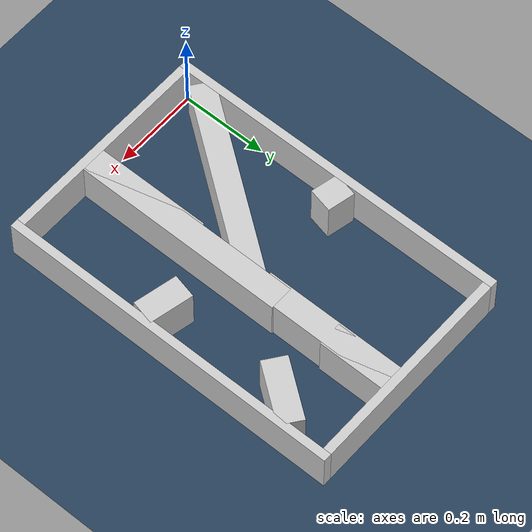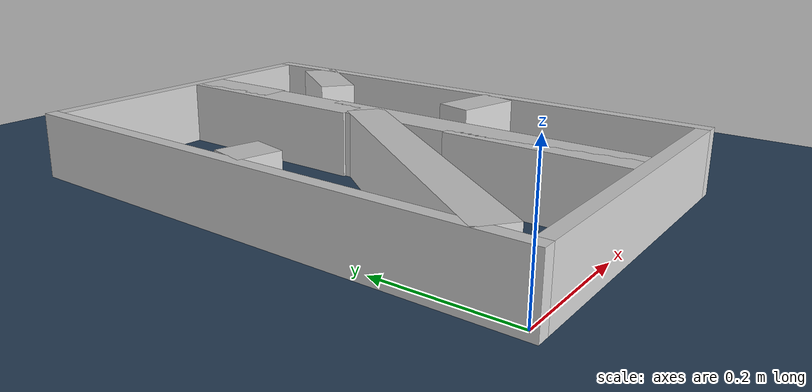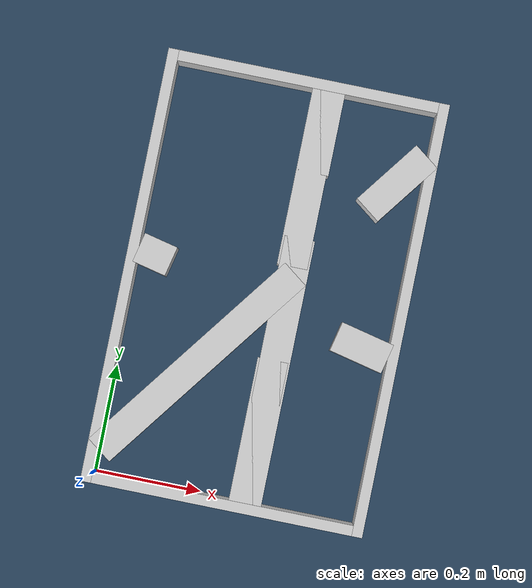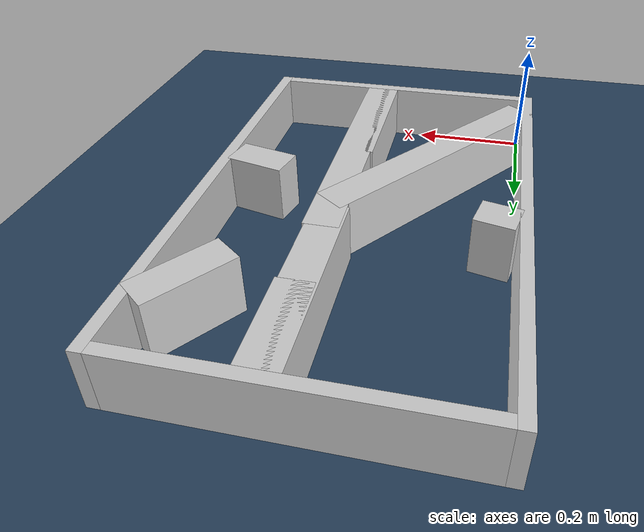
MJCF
<?xml version="1.0" ?>
<mujoco model="generated_real_template">
  <compiler angle="degree"/>
  <option timestep="0.002" integrator="implicitfast" iterations="100" cone="elliptic"/>
  <default>
    <geom density="1"/>
  </default>
  <asset>
    <texture builtin="gradient" height="3072" rgb1="0.3 0.5 0.7" rgb2="0 0 0" type="skybox" width="512"/>
    <texture builtin="checker" height="300" mark="edge" markrgb="0.8 0.8 0.8" name="groundplane" rgb1="0.2 0.3 0.4" rgb2="0.1 0.2 0.3" type="2d" width="300"/>
    <material name="groundplane" reflectance="0.2" texrepeat="5 5" texture="groundplane" texuniform="true"/>
  </asset>
  <worldbody>
    <light dir="0 0 -1" directional="true" pos="0 0 1.5"/>
    <geom name="floor" type="plane" condim="4" friction="0.5 0.005 0.001" material="groundplane" size="0 0 0.05"/>
    <body name="walls">
      <geom name="wall_boundary_left" type="box" condim="4" friction="1.0 0.005 0.0001" rgba="0.8 0.8 0.8 1" pos="-0.010000 0.387500 0.050000" euler="0 0 0.000000" size="0.010000 0.407500 0.050000"/>
      <geom name="wall_boundary_right" type="box" condim="4" friction="1.0 0.005 0.0001" rgba="0.8 0.8 0.8 1" pos="0.500000 0.387500 0.050000" euler="0 0 0.000000" size="0.010000 0.407500 0.050000"/>
      <geom name="wall_boundary_bottom" type="box" condim="4" friction="1.0 0.005 0.0001" rgba="0.8 0.8 0.8 1" pos="0.245000 -0.010000 0.050000" euler="0 0 0.000000" size="0.245000 0.010000 0.050000"/>
      <geom name="wall_boundary_top" type="box" condim="4" friction="1.0 0.005 0.0001" rgba="0.8 0.8 0.8 1" pos="0.245000 0.785000 0.050000" euler="0 0 0.000000" size="0.245000 0.010000 0.050000"/>
      <geom name="wall_inner_1_1" type="box" condim="4" friction="1.0 0.005 0.0001" rgba="0.8 0.8 0.8 1" pos="0.439611 0.323543 0.050000" euler="0 0 167.214636" size="0.051671 0.028500 0.050000"/>
      <geom name="wall_inner_1_2" type="box" condim="4" friction="1.0 0.005 0.0001" rgba="0.8 0.8 0.8 1" pos="0.031789 0.416088 0.050000" euler="0 0 167.214636" size="0.032598 0.028500 0.050000"/>
      <geom name="wall_inner_2_1" type="box" condim="4" friction="1.0 0.005 0.0001" rgba="0.8 0.8 0.8 1" pos="0.147807 0.237012 0.050000" euler="0 0 53.334145" size="0.242730 0.028500 0.050000"/>
      <geom name="wall_inner_2_2" type="box" condim="4" friction="1.0 0.005 0.0001" rgba="0.8 0.8 0.8 1" pos="0.443076 0.633638 0.050000" euler="0 0 53.334145" size="0.073788 0.028500 0.050000"/>
      <geom name="wall_inner_3_1" type="box" condim="4" friction="1.0 0.005 0.0001" rgba="0.8 0.8 0.8 1" pos="0.283883 0.134238 0.050000" euler="0 0 90.000000" size="0.134238 0.028500 0.050000"/>
      <geom name="wall_inner_3_2" type="box" condim="4" friction="1.0 0.005 0.0001" rgba="0.8 0.8 0.8 1" pos="0.283883 0.609467 0.050000" euler="0 0 90.000000" size="0.165533 0.028500 0.050000"/>
      <geom name="wall_inner_4_1" type="box" condim="4" friction="1.0 0.005 0.0001" rgba="0.8 0.8 0.8 1" pos="0.287677 0.249088 0.050000" euler="0 0 90.000000" size="0.249088 0.028500 0.050000"/>
      <geom name="wall_inner_4_2" type="box" condim="4" friction="1.0 0.005 0.0001" rgba="0.8 0.8 0.8 1" pos="0.287677 0.698080 0.050000" euler="0 0 90.000000" size="0.076920 0.028500 0.050000"/>
    </body>
  </worldbody>
</mujoco>
